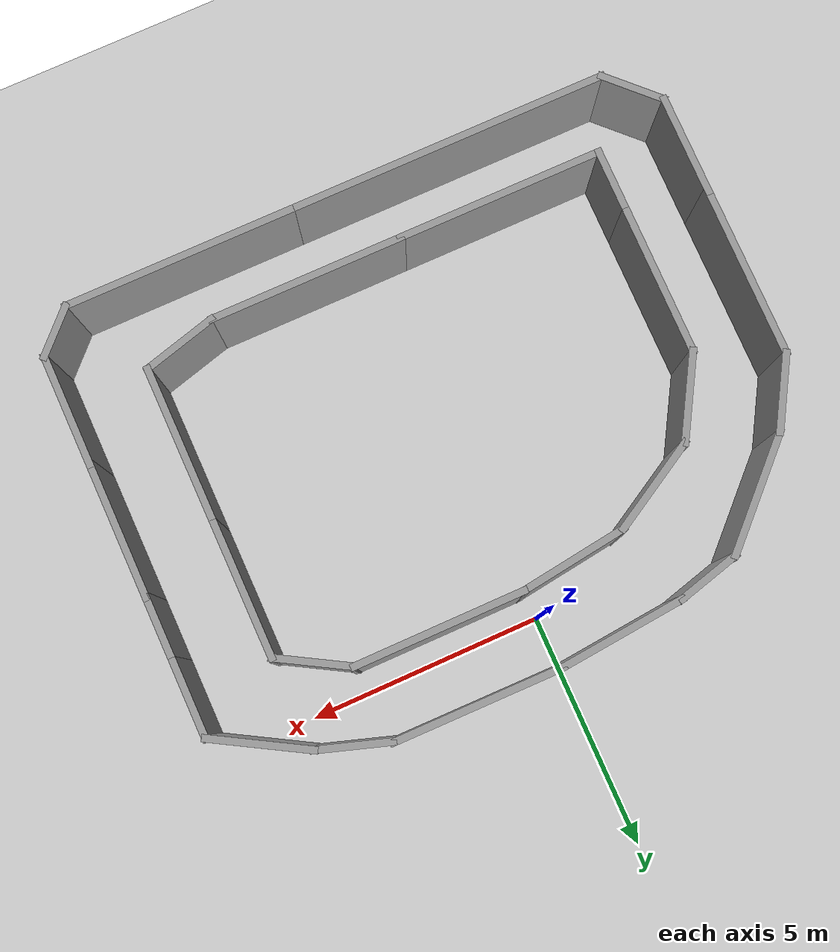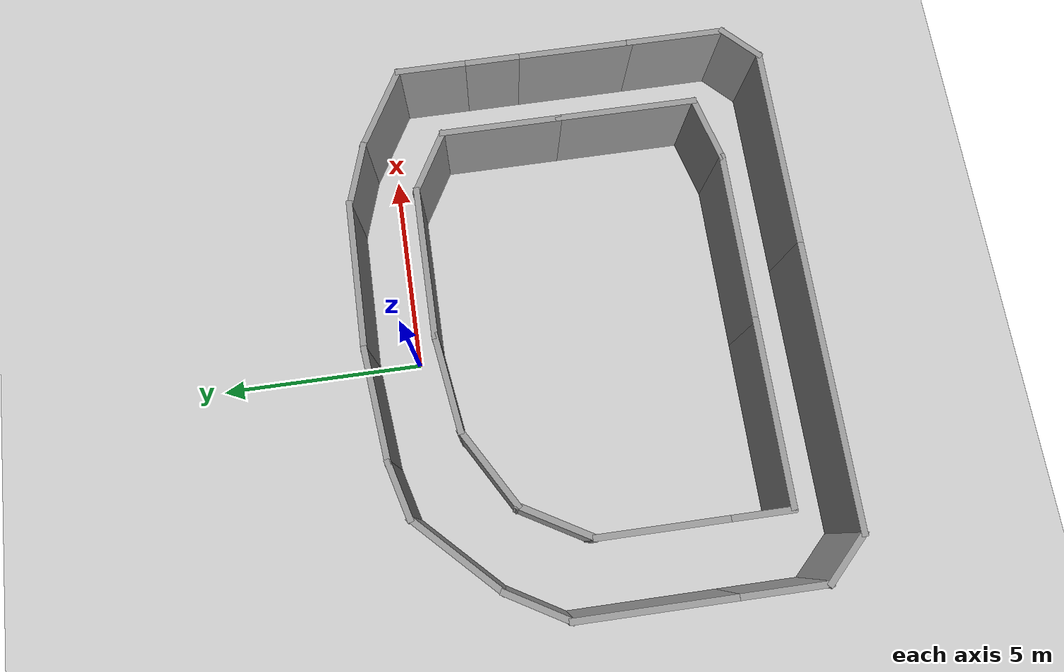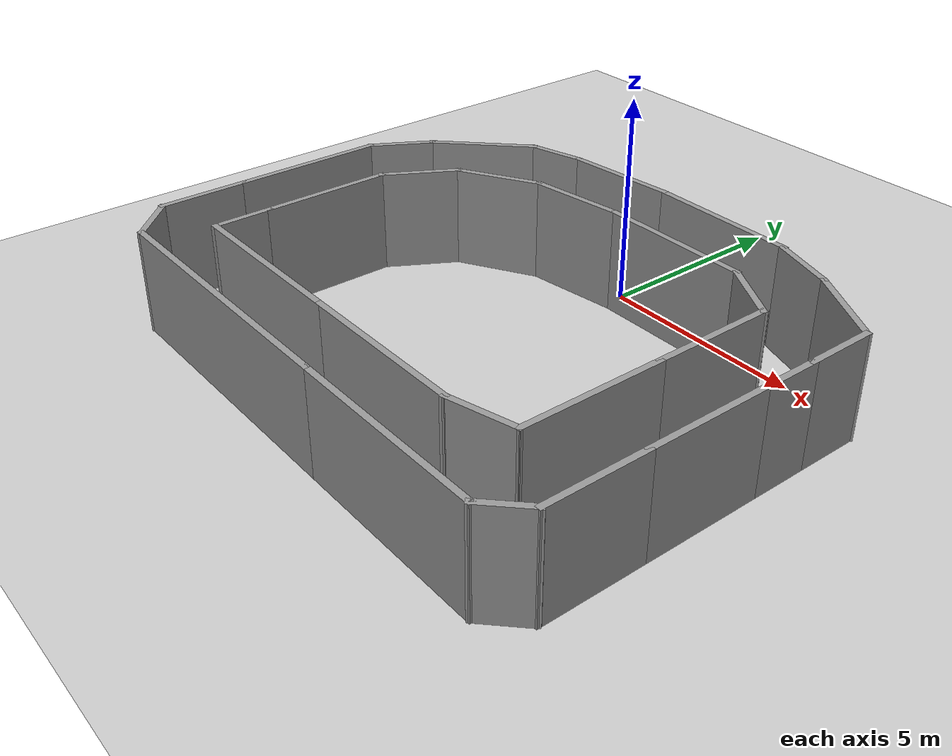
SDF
<sdf version="1.6">
 <world name="default">
  <light name="sun" type="directional">
   <pose>0 0 10 0 -0 0</pose>
   <diffuse>0.8 0.8 0.8 1</diffuse>
   <specular>0.1 0.1 0.1 1</specular>
   <attenuation>
    <range>1000</range>
    <constant>0.9</constant>
    <linear>0.01</linear>
    <quadratic>0.001</quadratic>
   </attenuation>
   <direction>-0.5 0.5 -1</direction>
  </light>
  <model name="ground_plane">
   <static>1</static>
   <link name="link">
    <collision name="collision">
     <geometry><plane><normal>0 0 1</normal><size>100 100</size></plane></geometry>
     <surface><friction><ode><mu>100</mu><mu2>50</mu2></ode></friction></surface>
    </collision>
    <visual name="visual">
     <cast_shadows>0</cast_shadows>
     <geometry><plane><normal>0 0 1</normal><size>100 100</size></plane></geometry>
     <material>
      <script><uri>file://media/materials/scripts/gazebo.material</uri><name>Gazebo/Grey</name></script>
     </material>
    </visual>
   </link>
  </model>
  <physics name="default_physics" default="0" type="ode">
   <max_step_size>0.01</max_step_size>
   <real_time_factor>1</real_time_factor>
   <real_time_update_rate>100</real_time_update_rate>
  </physics>
  <gravity>0 0 -9.8</gravity>
  <magnetic_field>6e-06 2.3e-05 -4.2e-05</magnetic_field>
  <atmosphere type="adiabatic"/>
  <scene><ambient>0.4 0.4 0.4 1</ambient><background>0.7 0.7 0.7 1</background><shadows>1</shadows></scene>
  <spherical_coordinates>
   <surface_model>EARTH_WGS84</surface_model>
   <latitude_deg>0</latitude_deg>
   <longitude_deg>0</longitude_deg>
   <elevation>0</elevation>
   <heading_deg>0</heading_deg>
  </spherical_coordinates>
  <model name="Track">
   <pose>0.220283 -4.15896 0 0 -0 0</pose>
   <link name="Wall_33">
    <collision name="Wall_33_Collision">
     <geometry><box><size>3.72415 0.15 2.5</size></box></geometry>
     <pose>0 0 1.25 0 -0 0</pose>
    </collision>
    <visual name="Wall_33_Visual">
     <pose>0 0 1.25 0 -0 0</pose>
     <geometry><box><size>3.72415 0.15 2.5</size></box></geometry>
     <material>
      <script><uri>file://media/materials/scripts/gazebo.material</uri><name>Gazebo/Grey</name></script>
      <ambient>1 1 1 1</ambient>
     </material>
    </visual>
    <pose>1.66581 5.24456 0 0 0 -0.005628</pose>
   </link>
   <link name="Wall_34">
    <collision name="Wall_34_Collision">
     <geometry><box><size>1.6683 0.15 2.5</size></box></geometry>
     <pose>0 0 1.25 0 -0 0</pose>
    </collision>
    <visual name="Wall_34_Visual">
     <pose>0 0 1.25 0 -0 0</pose>
     <geometry><box><size>1.6683 0.15 2.5</size></box></geometry>
     <material>
      <script><uri>file://media/materials/scripts/gazebo.material</uri><name>Gazebo/Grey</name></script>
      <ambient>1 1 1 1</ambient>
     </material>
    </visual>
    <pose>4.1752 4.98089 0 0 0 -0.312651</pose>
   </link>
   <link name="Wall_43">
    <collision name="Wall_43_Collision">
     <geometry><box><size>2.25 0.15 2.5</size></box></geometry>
     <pose>0 0 1.25 0 -0 0</pose>
    </collision>
    <visual name="Wall_43_Visual">
     <pose>0 0 1.25 0 -0 0</pose>
     <geometry><box><size>2.25 0.15 2.5</size></box></geometry>
     <material>
      <script><uri>file://media/materials/scripts/gazebo.material</uri><name>Gazebo/Grey</name></script>
      <ambient>1 1 1 1</ambient>
     </material>
    </visual>
    <pose>5.80688 4.22239 0 0 0 -0.523599</pose>
   </link>
   <link name="Wall_44">
    <collision name="Wall_44_Collision">
     <geometry><box><size>1.75 0.15 2.5</size></box></geometry>
     <pose>0 0 1.25 0 -0 0</pose>
    </collision>
    <visual name="Wall_44_Visual">
     <pose>0 0 1.25 0 -0 0</pose>
     <geometry><box><size>1.75 0.15 2.5</size></box></geometry>
     <material>
      <script><uri>file://media/materials/scripts/gazebo.material</uri><name>Gazebo/Grey</name></script>
      <ambient>1 1 1 1</ambient>
     </material>
    </visual>
    <pose>6.71621 2.89739 0 0 0 -1.5708</pose>
   </link>
   <link name="Wall_45">
    <collision name="Wall_45_Collision">
     <geometry><box><size>1.5 0.15 2.5</size></box></geometry>
     <pose>0 0 1.25 0 -0 0</pose>
    </collision>
    <visual name="Wall_45_Visual">
     <pose>0 0 1.25 0 -0 0</pose>
     <geometry><box><size>1.5 0.15 2.5</size></box></geometry>
     <material>
      <script><uri>file://media/materials/scripts/gazebo.material</uri><name>Gazebo/Grey</name></script>
      <ambient>1 1 1 1</ambient>
     </material>
    </visual>
    <pose>6.71621 1.42239 0 0 0 -1.5708</pose>
   </link>
   <link name="Wall_46">
    <collision name="Wall_46_Collision">
     <geometry><box><size>3 0.15 2.5</size></box></geometry>
     <pose>0 0 1.25 0 -0 0</pose>
    </collision>
    <visual name="Wall_46_Visual">
     <pose>0 0 1.25 0 -0 0</pose>
     <geometry><box><size>3 0.15 2.5</size></box></geometry>
     <material>
      <script><uri>file://media/materials/scripts/gazebo.material</uri><name>Gazebo/Grey</name></script>
      <ambient>1 1 1 1</ambient>
     </material>
    </visual>
    <pose>6.71621 -0.677613 0 0 0 -1.5708</pose>
   </link>
   <link name="Wall_47">
    <collision name="Wall_47_Collision">
     <geometry><box><size>2.5 0.15 2.5</size></box></geometry>
     <pose>0 0 1.25 0 -0 0</pose>
    </collision>
    <visual name="Wall_47_Visual">
     <pose>0 0 1.25 0 -0 0</pose>
     <geometry><box><size>2.5 0.15 2.5</size></box></geometry>
     <material>
      <script><uri>file://media/materials/scripts/gazebo.material</uri><name>Gazebo/Grey</name></script>
      <ambient>1 1 1 1</ambient>
     </material>
    </visual>
    <pose>6.71621 -3.27761 0 0 0 -1.5708</pose>
   </link>
   <link name="Wall_48">
    <collision name="Wall_48_Collision">
     <geometry><box><size>1.25 0.15 2.5</size></box></geometry>
     <pose>0 0 1.25 0 -0 0</pose>
    </collision>
    <visual name="Wall_48_Visual">
     <pose>0 0 1.25 0 -0 0</pose>
     <geometry><box><size>1.25 0.15 2.5</size></box></geometry>
     <material>
      <script><uri>file://media/materials/scripts/gazebo.material</uri><name>Gazebo/Grey</name></script>
      <ambient>1 1 1 1</ambient>
     </material>
    </visual>
    <pose>6.3273 -4.84152 0 0 0 -2.35619</pose>
   </link>
   <link name="Wall_49">
    <collision name="Wall_49_Collision">
     <geometry><box><size>5 0.15 2.5</size></box></geometry>
     <pose>0 0 1.25 0 -0 0</pose>
    </collision>
    <visual name="Wall_49_Visual">
     <pose>0 0 1.25 0 -0 0</pose>
     <geometry><box><size>5 0.15 2.5</size></box></geometry>
     <material>
      <script><uri>file://media/materials/scripts/gazebo.material</uri><name>Gazebo/Grey</name></script>
      <ambient>1 1 1 1</ambient>
     </material>
    </visual>
    <pose>3.51339 -5.23043 0 0 -0 3.14159</pose>
   </link>
   <link name="Wall_50">
    <collision name="Wall_50_Collision">
     <geometry><box><size>7 0.15 2.5</size></box></geometry>
     <pose>0 0 1.25 0 -0 0</pose>
    </collision>
    <visual name="Wall_50_Visual">
     <pose>0 0 1.25 0 -0 0</pose>
     <geometry><box><size>7 0.15 2.5</size></box></geometry>
     <material>
      <script><uri>file://media/materials/scripts/gazebo.material</uri><name>Gazebo/Grey</name></script>
      <ambient>1 1 1 1</ambient>
     </material>
    </visual>
    <pose>-2.33661 -5.23043 0 0 -0 3.14159</pose>
   </link>
   <link name="Wall_51">
    <collision name="Wall_51_Collision">
     <geometry><box><size>1.5 0.15 2.5</size></box></geometry>
     <pose>0 0 1.25 0 -0 0</pose>
    </collision>
    <visual name="Wall_51_Visual">
     <pose>0 0 1.25 0 -0 0</pose>
     <geometry><box><size>1.5 0.15 2.5</size></box></geometry>
     <material>
      <script><uri>file://media/materials/scripts/gazebo.material</uri><name>Gazebo/Grey</name></script>
      <ambient>1 1 1 1</ambient>
     </material>
    </visual>
    <pose>-6.23891 -4.75313 0 0 -0 2.35619</pose>
   </link>
   <link name="Wall_52">
    <collision name="Wall_52_Collision">
     <geometry><box><size>2.25 0.15 2.5</size></box></geometry>
     <pose>0 0 1.25 0 -0 0</pose>
    </collision>
    <visual name="Wall_52_Visual">
     <pose>0 0 1.25 0 -0 0</pose>
     <geometry><box><size>2.25 0.15 2.5</size></box></geometry>
     <material>
      <script><uri>file://media/materials/scripts/gazebo.material</uri><name>Gazebo/Grey</name></script>
      <ambient>1 1 1 1</ambient>
     </material>
    </visual>
    <pose>-6.71621 -3.22584 0 0 -0 1.5708</pose>
   </link>
   <link name="Wall_53">
    <collision name="Wall_53_Collision">
     <geometry><box><size>3.75 0.15 2.5</size></box></geometry>
     <pose>0 0 1.25 0 -0 0</pose>
    </collision>
    <visual name="Wall_53_Visual">
     <pose>0 0 1.25 0 -0 0</pose>
     <geometry><box><size>3.75 0.15 2.5</size></box></geometry>
     <material>
      <script><uri>file://media/materials/scripts/gazebo.material</uri><name>Gazebo/Grey</name></script>
      <ambient>1 1 1 1</ambient>
     </material>
    </visual>
    <pose>-6.71621 -0.375837 0 0 -0 1.5708</pose>
   </link>
   <link name="Wall_54">
    <collision name="Wall_54_Collision">
     <geometry><box><size>1.75 0.15 2.5</size></box></geometry>
     <pose>0 0 1.25 0 -0 0</pose>
    </collision>
    <visual name="Wall_54_Visual">
     <pose>0 0 1.25 0 -0 0</pose>
     <geometry><box><size>1.75 0.15 2.5</size></box></geometry>
     <material>
      <script><uri>file://media/materials/scripts/gazebo.material</uri><name>Gazebo/Grey</name></script>
      <ambient>1 1 1 1</ambient>
     </material>
    </visual>
    <pose>-6.31621 2.11698 0 0 -0 1.0472</pose>
   </link>
   <link name="Wall_55">
    <collision name="Wall_55_Collision">
     <geometry><box><size>2.75 0.15 2.5</size></box></geometry>
     <pose>0 0 1.25 0 -0 0</pose>
    </collision>
    <visual name="Wall_55_Visual">
     <pose>0 0 1.25 0 -0 0</pose>
     <geometry><box><size>2.75 0.15 2.5</size></box></geometry>
     <material>
      <script><uri>file://media/materials/scripts/gazebo.material</uri><name>Gazebo/Grey</name></script>
      <ambient>1 1 1 1</ambient>
     </material>
    </visual>
    <pose>-4.99697 3.72904 0 0 -0 0.785398</pose>
   </link>
   <link name="Wall_56">
    <collision name="Wall_56_Collision">
     <geometry><box><size>1.5 0.15 2.5</size></box></geometry>
     <pose>0 0 1.25 0 -0 0</pose>
    </collision>
    <visual name="Wall_56_Visual">
     <pose>0 0 1.25 0 -0 0</pose>
     <geometry><box><size>1.5 0.15 2.5</size></box></geometry>
     <material>
      <script><uri>file://media/materials/scripts/gazebo.material</uri><name>Gazebo/Grey</name></script>
      <ambient>1 1 1 1</ambient>
     </material>
    </visual>
    <pose>-3.42573 4.82298 0 0 -0 0.261799</pose>
   </link>
   <link name="Wall_57">
    <collision name="Wall_57_Collision">
     <geometry><box><size>2.81491 0.15 2.5</size></box></geometry>
     <pose>0 0 1.25 0 -0 0</pose>
    </collision>
    <visual name="Wall_57_Visual">
     <pose>0 0 1.25 0 -0 0</pose>
     <geometry><box><size>2.81491 0.15 2.5</size></box></geometry>
     <material>
      <script><uri>file://media/materials/scripts/gazebo.material</uri><name>Gazebo/Grey</name></script>
      <ambient>1 1 1 1</ambient>
     </material>
    </visual>
    <pose>-1.44748 5.12615 0 0 -0 0.096562</pose>
   </link>
   <link name="Wall_59">
    <collision name="Wall_59_Collision">
     <geometry><box><size>3.75 0.15 2.5</size></box></geometry>
     <pose>0 0 1.25 0 -0 0</pose>
    </collision>
    <visual name="Wall_59_Visual">
     <pose>0 0 1.25 0 -0 0</pose>
     <geometry><box><size>3.75 0.15 2.5</size></box></geometry>
     <material>
      <script><uri>file://media/materials/scripts/gazebo.material</uri><name>Gazebo/Grey</name></script>
      <ambient>1 1 1 1</ambient>
     </material>
    </visual>
    <pose>1.76166 3.60443 0 0 -0 0</pose>
   </link>
   <link name="Wall_60">
    <collision name="Wall_60_Collision">
     <geometry><box><size>1.75 0.15 2.5</size></box></geometry>
     <pose>0 0 1.25 0 -0 0</pose>
    </collision>
    <visual name="Wall_60_Visual">
     <pose>0 0 1.25 0 -0 0</pose>
     <geometry><box><size>1.75 0.15 2.5</size></box></geometry>
     <material>
      <script><uri>file://media/materials/scripts/gazebo.material</uri><name>Gazebo/Grey</name></script>
      <ambient>1 1 1 1</ambient>
     </material>
    </visual>
    <pose>4.25448 3.20443 0 0 0 -0.523599</pose>
   </link>
   <link name="Wall_61">
    <collision name="Wall_61_Collision">
     <geometry><box><size>3 0.15 2.5</size></box></geometry>
     <pose>0 0 1.25 0 -0 0</pose>
    </collision>
    <visual name="Wall_61_Visual">
     <pose>0 0 1.25 0 -0 0</pose>
     <geometry><box><size>3 0.15 2.5</size></box></geometry>
     <material>
      <script><uri>file://media/materials/scripts/gazebo.material</uri><name>Gazebo/Grey</name></script>
      <ambient>1 1 1 1</ambient>
     </material>
    </visual>
    <pose>4.9473 1.37943 0 0 0 -1.5708</pose>
   </link>
   <link name="Wall_62">
    <collision name="Wall_62_Collision">
     <geometry><box><size>3.5 0.15 2.5</size></box></geometry>
     <pose>0 0 1.25 0 -0 0</pose>
    </collision>
    <visual name="Wall_62_Visual">
     <pose>0 0 1.25 0 -0 0</pose>
     <geometry><box><size>3.5 0.15 2.5</size></box></geometry>
     <material>
      <script><uri>file://media/materials/scripts/gazebo.material</uri><name>Gazebo/Grey</name></script>
      <ambient>1 1 1 1</ambient>
     </material>
    </visual>
    <pose>4.9473 -1.72057 0 0 0 -1.5708</pose>
   </link>
   <link name="Wall_63">
    <collision name="Wall_63_Collision">
     <geometry><box><size>1.75 0.15 2.5</size></box></geometry>
     <pose>0 0 1.25 0 -0 0</pose>
    </collision>
    <visual name="Wall_63_Visual">
     <pose>0 0 1.25 0 -0 0</pose>
     <geometry><box><size>1.75 0.15 2.5</size></box></geometry>
     <material>
      <script><uri>file://media/materials/scripts/gazebo.material</uri><name>Gazebo/Grey</name></script>
      <ambient>1 1 1 1</ambient>
     </material>
    </visual>
    <pose>4.17456 -3.60262 0 0 0 -2.87979</pose>
   </link>
   <link name="Wall_64">
    <collision name="Wall_64_Collision">
     <geometry><box><size>4.25 0.15 2.5</size></box></geometry>
     <pose>0 0 1.25 0 -0 0</pose>
    </collision>
    <visual name="Wall_64_Visual">
     <pose>0 0 1.25 0 -0 0</pose>
     <geometry><box><size>4.25 0.15 2.5</size></box></geometry>
     <material>
      <script><uri>file://media/materials/scripts/gazebo.material</uri><name>Gazebo/Grey</name></script>
      <ambient>1 1 1 1</ambient>
     </material>
    </visual>
    <pose>1.35182 -3.80968 0 0 -0 3.14159</pose>
   </link>
   <link name="Wall_65">
    <collision name="Wall_65_Collision">
     <geometry><box><size>4.5 0.15 2.5</size></box></geometry>
     <pose>0 0 1.25 0 -0 0</pose>
    </collision>
    <visual name="Wall_65_Visual">
     <pose>0 0 1.25 0 -0 0</pose>
     <geometry><box><size>4.5 0.15 2.5</size></box></geometry>
     <material>
      <script><uri>file://media/materials/scripts/gazebo.material</uri><name>Gazebo/Grey</name></script>
      <ambient>1 1 1 1</ambient>
     </material>
    </visual>
    <pose>-2.87318 -3.80968 0 0 -0 3.14159</pose>
   </link>
   <link name="Wall_66">
    <collision name="Wall_66_Collision">
     <geometry><box><size>1.5 0.15 2.5</size></box></geometry>
     <pose>0 0 1.25 0 -0 0</pose>
    </collision>
    <visual name="Wall_66_Visual">
     <pose>0 0 1.25 0 -0 0</pose>
     <geometry><box><size>1.5 0.15 2.5</size></box></geometry>
     <material>
      <script><uri>file://media/materials/scripts/gazebo.material</uri><name>Gazebo/Grey</name></script>
      <ambient>1 1 1 1</ambient>
     </material>
    </visual>
    <pose>-5.04818 -3.13468 0 0 -0 1.5708</pose>
   </link>
   <link name="Wall_67">
    <collision name="Wall_67_Collision">
     <geometry><box><size>3.25 0.15 2.5</size></box></geometry>
     <pose>0 0 1.25 0 -0 0</pose>
    </collision>
    <visual name="Wall_67_Visual">
     <pose>0 0 1.25 0 -0 0</pose>
     <geometry><box><size>3.25 0.15 2.5</size></box></geometry>
     <material>
      <script><uri>file://media/materials/scripts/gazebo.material</uri><name>Gazebo/Grey</name></script>
      <ambient>1 1 1 1</ambient>
     </material>
    </visual>
    <pose>-5.04818 -0.909679 0 0 -0 1.5708</pose>
   </link>
   <link name="Wall_68">
    <collision name="Wall_68_Collision">
     <geometry><box><size>2 0.15 2.5</size></box></geometry>
     <pose>0 0 1.25 0 -0 0</pose>
    </collision>
    <visual name="Wall_68_Visual">
     <pose>0 0 1.25 0 -0 0</pose>
     <geometry><box><size>2 0.15 2.5</size></box></geometry>
     <material>
      <script><uri>file://media/materials/scripts/gazebo.material</uri><name>Gazebo/Grey</name></script>
      <ambient>1 1 1 1</ambient>
     </material>
    </visual>
    <pose>-4.58568 1.44139 0 0 -0 1.0472</pose>
   </link>
   <link name="Wall_69">
    <collision name="Wall_69_Collision">
     <geometry><box><size>2.25 0.15 2.5</size></box></geometry>
     <pose>0 0 1.25 0 -0 0</pose>
    </collision>
    <visual name="Wall_69_Visual">
     <pose>0 0 1.25 0 -0 0</pose>
     <geometry><box><size>2.25 0.15 2.5</size></box></geometry>
     <material>
      <script><uri>file://media/materials/scripts/gazebo.material</uri><name>Gazebo/Grey</name></script>
      <ambient>1 1 1 1</ambient>
     </material>
    </visual>
    <pose>-3.21386 2.76747 0 0 -0 0.523599</pose>
   </link>
   <link name="Wall_70">
    <collision name="Wall_70_Collision">
     <geometry><box><size>2.43756 0.15 2.5</size></box></geometry>
     <pose>0 0 1.25 0 -0 0</pose>
    </collision>
    <visual name="Wall_70_Visual">
     <pose>0 0 1.25 0 -0 0</pose>
     <geometry><box><size>2.43756 0.15 2.5</size></box></geometry>
     <material>
      <script><uri>file://media/materials/scripts/gazebo.material</uri><name>Gazebo/Grey</name></script>
      <ambient>1 1 1 1</ambient>
     </material>
    </visual>
    <pose>-1.17143 3.44845 0 0 -0 0.1368</pose>
   </link>
   <static>1</static>
  </model>
 </world>
</sdf>
